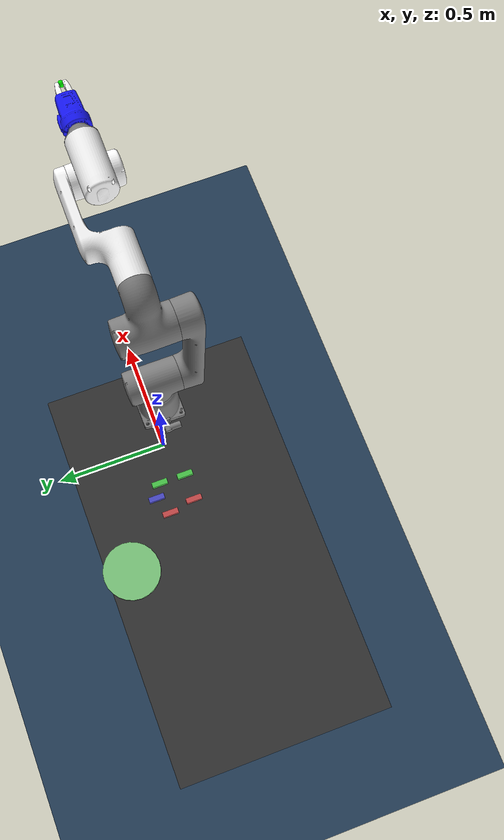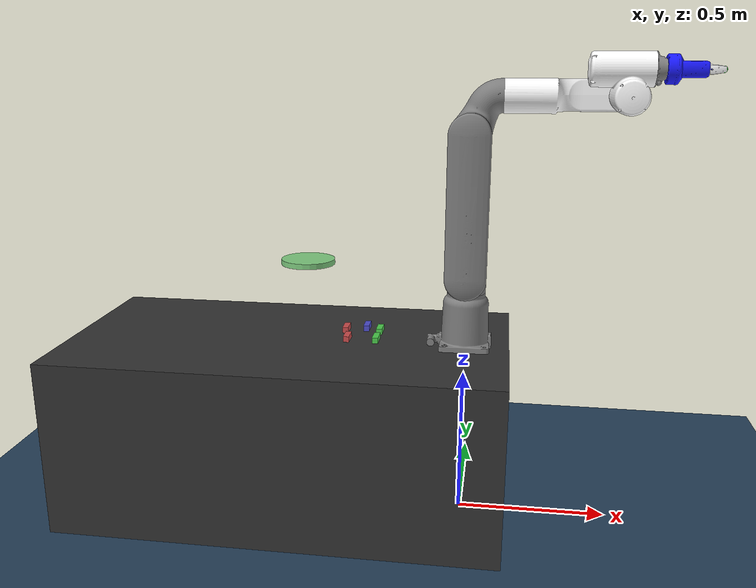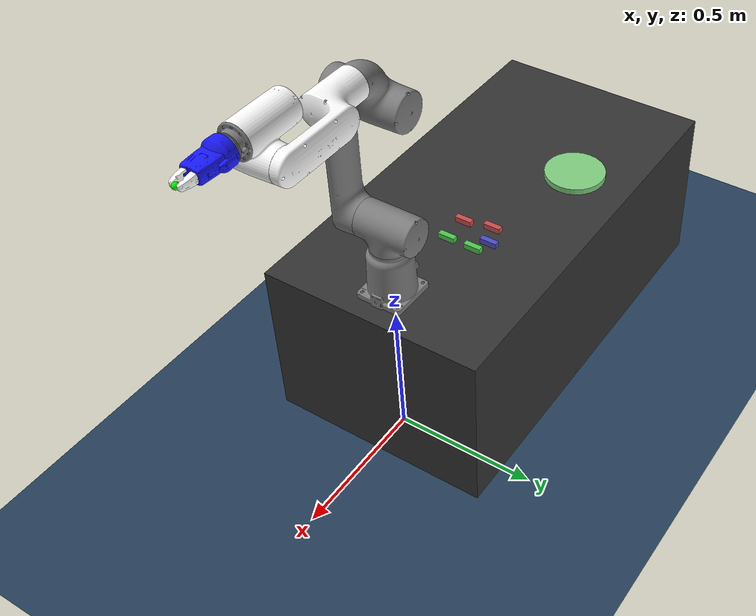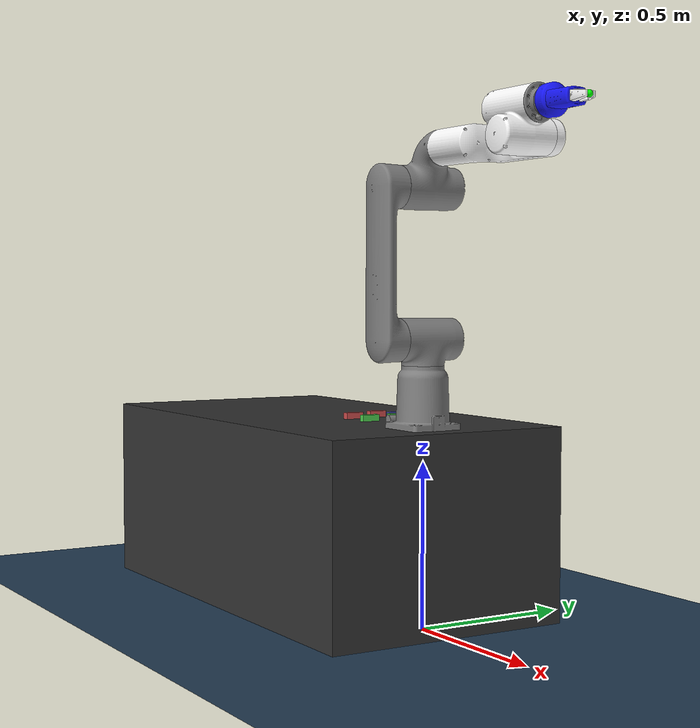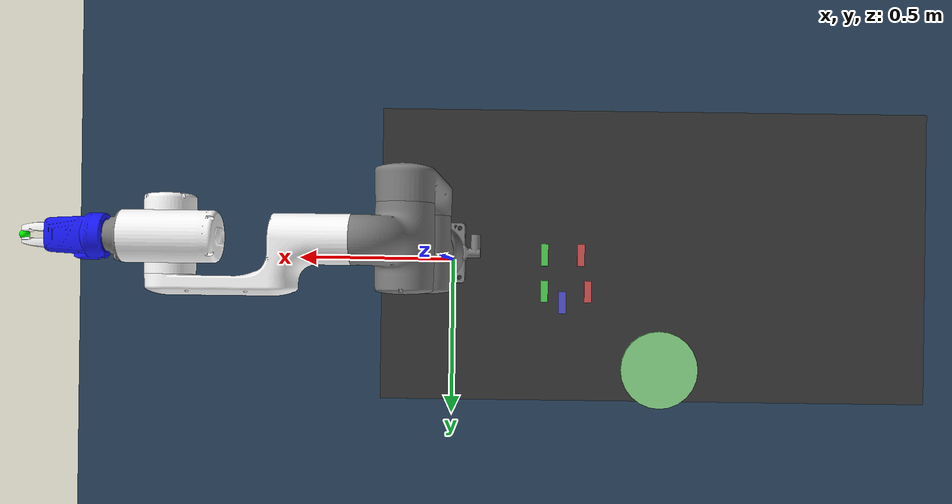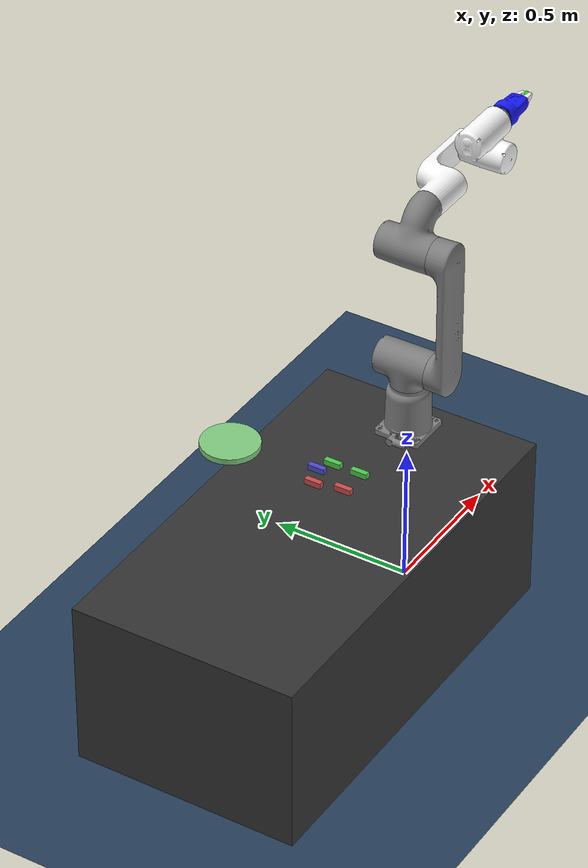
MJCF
<mujoco model="pick and place scene">

	<option gravity="0 0 -9.81" />

	<statistic meansize=".05"/>

	<visual>
		<headlight diffuse="0.6 0.6 0.6"  ambient="0.3 0.3 0.3" specular="0 0 0"/>
		<rgba haze="0.15 0.25 0.35 1"/>
	</visual>

	<asset>
		<texture type="skybox" builtin="gradient" rgb1="0.3 0.5 0.7" rgb2="0 0 0" width="512"
			height="3072"/>
		<texture type="2d" name="groundplane" builtin="checker" mark="edge" rgb1="0.2 0.3 0.4"
			rgb2="0.1 0.2 0.3" markrgb="0.8 0.8 0.8" width="300" height="300"/>
		<material name="groundplane" texture="groundplane" texuniform="true" texrepeat="5 5"
			reflectance="0.2"/>
	</asset>

	<include file ="assets/gofa_asset.xml"/>

	<worldbody>
		<body pos="0 0 0.6">
			<include file="assets/gofa_body.xml"/>
		</body>
	</worldbody>

	<worldbody>
		<light pos="0 0 2" dir="0 0 -1" directional="true"/>

		<geom name="floor" size="0 0 0.05" type="plane" material="groundplane" contype="1" conaffinity="1"/>

		<!-- Table -->
		<body name="table" pos="-0.6 0 0.3">
			<inertial pos="0 0 0" mass="1" diaginertia="0 0 0"/>
			<geom type="box" size="0.75 0.4 0.3" rgba="0.2 0.2 0.2 1" friction="1 1 1"/>
		</body>

		<body name="red_block" pos="-0.4 0 0.61">
			<inertial pos="0 0 0" mass="0.01" diaginertia="0 0 0"/>
			<joint type="free"/>
			<geom type="box" size="0.01 0.03 0.01" rgba="0.8 0.3 0.3 1" friction="1 1 1"/>
		</body>

		<body name="red_block2" pos="-0.42 0.1 0.61">
			<inertial pos="0 0 0" mass="0.01" diaginertia="0.0 0.0 0.0"/>
			<joint type="free"/>
			<geom type="box" size="0.01 0.03 0.01" rgba="0.8 0.3 0.3 1" friction="1 1 1"/>
		</body>

		<body name="green_block" pos="-0.3 0 0.61">
			<inertial pos="0 0 0" mass="0.01" diaginertia="0.0 0.0 0.0"/>
			<joint type="free"/>
			<geom type="box" size="0.01 0.03 0.01" rgba="0.3 0.8 0.3 1" friction="1 1 1"/>
		</body>

		<body name="green_block2" pos="-0.3 0.1 0.61">
			<inertial pos="0 0 0" mass="0.01" diaginertia="0.0 0.0 0.0"/>
			<joint type="free"/>
			<geom type="box" size="0.01 0.03 0.01" rgba="0.3 0.8 0.3 1" friction="1 1 1"/>
		</body>

		<body name="blue_block" pos="-0.35 0.13 0.61">
			<inertial pos="0 0 0" mass="0.01" diaginertia="0.0 0.0 0.0"/>
			<joint type="free"/>
			<geom type="box" size="0.01 0.03 0.01" rgba="0.3 0.3 0.8 1" friction="1 1 1"/>
		</body>

		<!-- Target region-->
		<body name="container" pos="-0.60 0.3 0.8">
			<inertial pos="0 0 0" mass="1" diaginertia="1.0 1.0 1.0"/>
			<geom type="cylinder" size="0.1 0.01" rgba="0.5 0.8 0.5 1" friction="1 1 1"/>
		</body>

		<!-- External camera -->
		<camera
		name="external_camera"
		pos="-0.5 0 1.3"
		euler="0 -15 -90"
		mode="fixed"
		resolution="1280 720"
		fovy="69"
		/>

	</worldbody>

</mujoco>

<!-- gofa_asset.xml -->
<mujoco>
<compiler meshdir="assets/mesh" inertiafromgeom="true"/>

<asset>
	<mesh name="link0" file="CRB15000_5kg-950_OmniCore_rev00_LINK0_CAD.STL" />
	<mesh name="link1" file="CRB15000_5kg-950_OmniCore_rev00_LINK1_CAD.STL" />
	<mesh name="link2" file="CRB15000_5kg-950_OmniCore_rev00_LINK2_CAD.STL" />
	<mesh name="link3" file="CRB15000_5kg-950_OmniCore_rev00_LINK3_CAD.STL" />
	<mesh name="link4" file="CRB15000_5kg-950_OmniCore_rev00_LINK4_CAD.STL" />
	<mesh name="link5" file="CRB15000_5kg-950_OmniCore_rev00_LINK5_CAD.STL" />
	<mesh name="link6" file="CRB15000_5kg-950_OmniCore_rev00_LINK6_CAD.STL" />
	<mesh name="gripper_body" file="gripper_body.STL" />
	<mesh name="finger1" file="finger1.STL" />
	<mesh name="finger2" file="finger2.STL" />

	<!-- Add checkerboard texture and material -->
	<texture name="checker_tex" type="2d" builtin="checker" width="512" height="512" />
	<material name="checker_mat" texture="checker_tex" texrepeat="8 8" rgba="1 1 1 1"/>
</asset>

	<actuator>
		<position name="joint1_act" joint="joint1" ctrlrange="0 6.28" kp="1000" dampratio="1"/>
		<position name="joint2_act" joint="joint2" ctrlrange="-3.14 3.14" kp="1000" dampratio="1"/>
		<position name="joint3_act" joint="joint3" ctrlrange="-3.14 3.14" kp="1000" dampratio="1"/>
		<position name="joint4_act" joint="joint4" ctrlrange="-3.14 3.14" kp="1000" dampratio="1"/>
		<position name="joint5_act" joint="joint5" ctrlrange="-3.14 3.14" kp="1000" dampratio="1"/>
		<position name="joint6_act" joint="joint6" ctrlrange="-3.14 3.14" kp="50" dampratio="1"/>
		<position name="finger1_act" joint="joint_finger1" ctrllimited="true" ctrlrange="0 0.012" kp="100" dampratio="1"/>
		<position name="finger2_act" joint="joint_finger2" ctrllimited="true" ctrlrange="0 0.012" kp="100" dampratio="1"/>
	</actuator>

	<contact>
		<exclude body1="link0" body2="link1"/>
		<exclude body1="link1" body2="link2"/>
		<exclude body1="link2" body2="link3"/>
		<exclude body1="link3" body2="link4"/>
		<exclude body1="link4" body2="link5"/>
		<exclude body1="link5" body2="link6"/>
		<exclude body1="link6" body2="gripper"/>
	</contact>

</mujoco>

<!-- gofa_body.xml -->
<mujoco>
	<frame name="robot_offset" pos="-0.125 -0.21 0">
		<body name="robot">
			<body name="link0" gravcomp="1">
				<geom type="mesh" mesh="link0" rgba ="0.5 0.5 0.5 1" gap="0.01" mass="3.50083457958494"/>

				<body name="link1" gravcomp="1">
					<joint name="joint1" type="hinge" axis="0 0 1" range="0 360" limited="true" pos="0.125 0.21 0"/>
					<geom type="mesh" mesh="link1" rgba ="0.5 0.5 0.5 1" gap="0.01" mass="2.76743491139404"/>

					<body name="link2" gravcomp="1">
						<joint name="joint2" type="hinge" axis="0 1 0" range="-90 90" limited="true" pos="0.125 0.21 0.265"/>
						<geom type="mesh" mesh="link2" rgba ="0.5 0.5 0.5 1" gap="0.01" mass="4.28904168670464"/>

						<body name="link3" gravcomp="1">
							<joint name="joint3" type="hinge" axis="0 1 0" range="-90 90" limited="true" pos="0.125 0.21 0.71"/>
							<geom type="mesh" mesh="link3" rgba ="0.5 0.5 0.5 1" gap="0.01" mass="3.38333107992875"/>

							<body name="link4" gravcomp="1">
								<joint name="joint4" type="hinge" axis="1 0 0" range="-90 90" limited="true" pos="0.125 0.205 0.8185"/>
								<geom type="mesh" mesh="link4" rgba ="1 1 1 1" gap="0.01" mass="2.77857535641324"/>

								<body name="link5" gravcomp="1">
									<joint name="joint5" type="hinge" axis="0 1 0" range="-90 90" limited="true" pos="0.5959 0.205 0.8183"/>
									<geom type="mesh" mesh="link5" rgba ="1 1 1 1" gap="0.01" mass="3.01105814739001"/>
									<body name="realsense" pos="0.65 0.205 0.965" gravcomp="1">
										<!-- Wrist mounted camera-->
										<camera name="camera_depth" pos="0 0.015 0" euler="0 -90 -90" resolution="1280 720" fovy="69"/>
										<camera name="camera_rgb" euler=" 0 -90 -90" resolution="1280 720" fovy="69"/>
									</body>

									<body name="link6" gravcomp="1">
										<joint name="joint6" type="hinge" axis="1 0 0" range="-360 360" limited="true" pos="0.125 0.208 0.899"/>
										<geom type="mesh" mesh="link6" mass="0.146500988015653" solref="0.002 1" solimp="0.99 0.99 0.001" friction="2 1 1"/>

										<body name="gripper" gravcomp="1">
											<geom type="mesh" mesh="gripper_body" rgba="0.1 0.1 1 1" mass="0.4" contype="1" conaffinity="1"/>
											<site  name="ee_site" pos="0.86 0.208 0.899" size="0.01" rgba="0 1 0 1"/>
											<body>
												<joint name="joint_finger1" type="slide" axis="0 1 0" range="-0.006 0.006" limited="true" pos="0.125 0.21 0"/>
												<geom type="mesh" mesh="finger1" rgba="1 1 1 1" solref="0.002 1" solimp="0.99 0.99 0.001" friction="2 1 1" contype="1" conaffinity="1"/>
											</body>

											<body>
												<joint name="joint_finger2" type="slide" axis="0 1 0" range="-0.006 0.006" limited="true" pos="0.125 0.21 0"/>
												<geom type="mesh" mesh="finger2" rgba="1 1 1 1" solref="0.002 1" solimp="0.99 0.99 0.001" friction="2 1 1" contype="1" conaffinity="1"/>
											</body>

										</body>
									</body>
								</body>
							</body>
						</body>
					</body>
				</body>
			</body>

		</body>
	</frame>

</mujoco>
